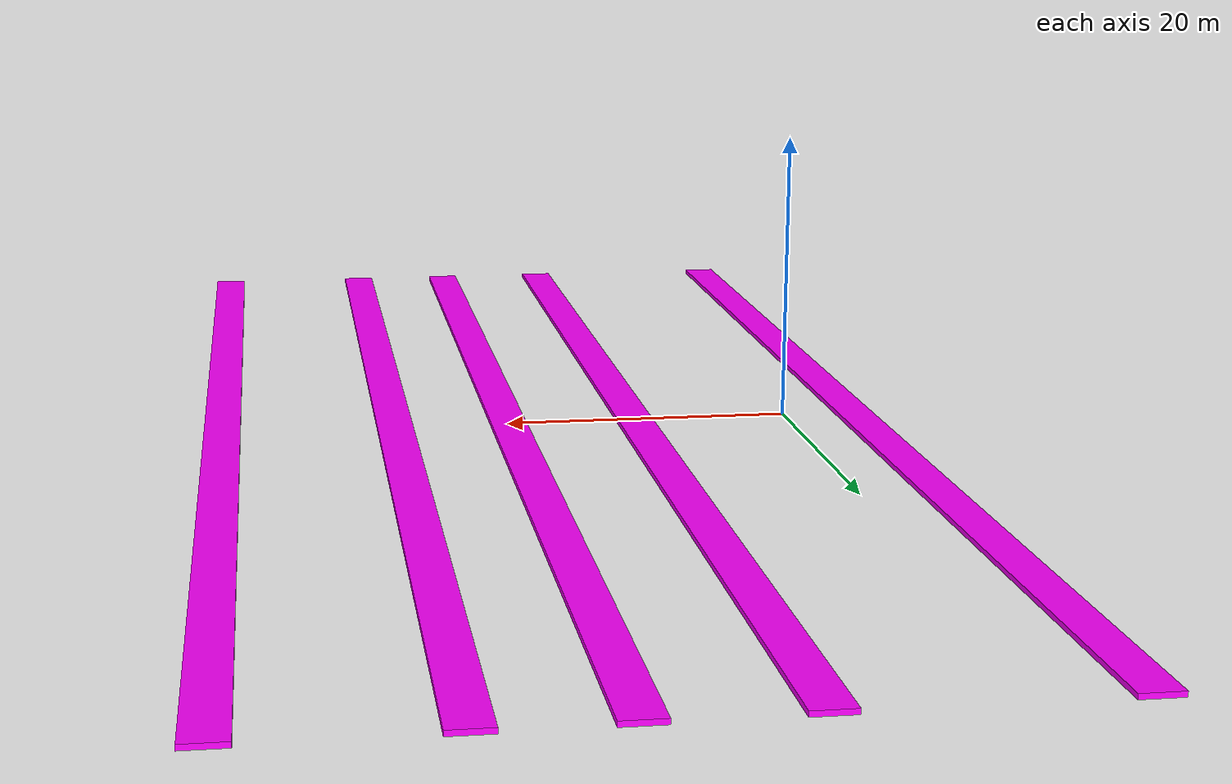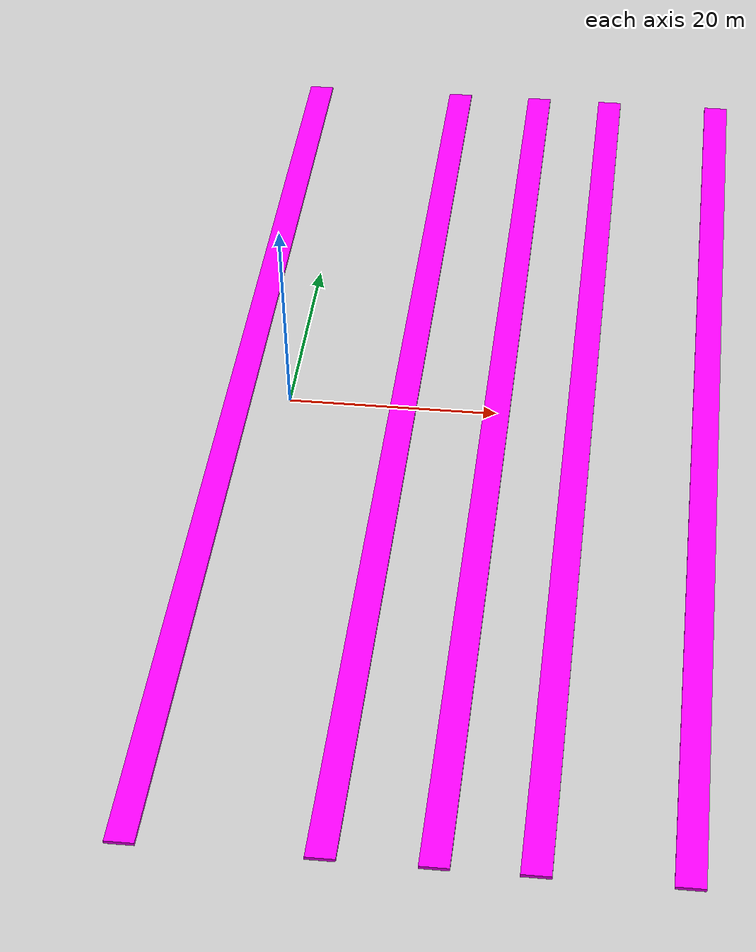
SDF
<sdf version="1.5">
 <world name="default">
  <include><uri>model://sun</uri></include>
  <include><uri>model://step</uri><name>step1</name><pose>-5 0 0.16 0 0 0</pose></include>
  <include><uri>model://step</uri><name>step2</name><pose>11 0 0.16 0 0 0</pose></include>
  <include><uri>model://step</uri><name>step3</name><pose>20 0 0.16 0 0 0</pose></include>
  <include><uri>model://step</uri><name>step4</name><pose>28 0 0.16 0 0 0</pose></include>
  <include><uri>model://step</uri><name>step5</name><pose>40 0 0.16 0 0 0</pose></include>
  <scene><sky><clouds><speed>50</speed></clouds></sky><ambient>0 0 0 1.0</ambient><shadows>0</shadows></scene>
 </world>
</sdf>

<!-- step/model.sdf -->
<sdf version="1.4">

  <model name="step">
    <static>true</static>

    <link name="link">

      <collision name="collision">

        <geometry>
          <box>
            <size>2.5 108.5 0.32</size>
          </box>
        </geometry>

      </collision>

      <visual name="visual">

        <geometry>
          <box>
            <size>2.5 108.5 0.32</size>
          </box>
        </geometry>

        <material>
          <ambient>0.3607 0.2 0.0901 1</ambient>
          <diffuse>1 0 1 1</diffuse>
          <specular>0.1 0.1 0.1 1</specular>
          <emissive>0 0 0 0</emissive>
        </material>

      </visual>

    </link>

  </model>

</sdf>
